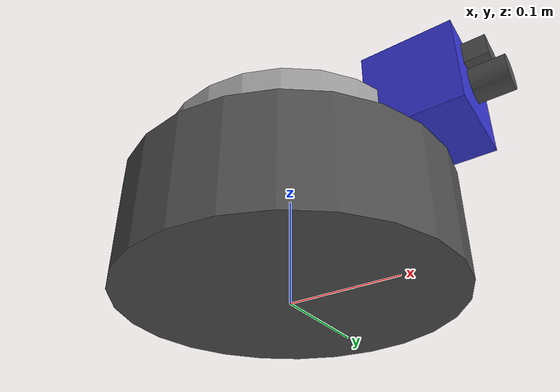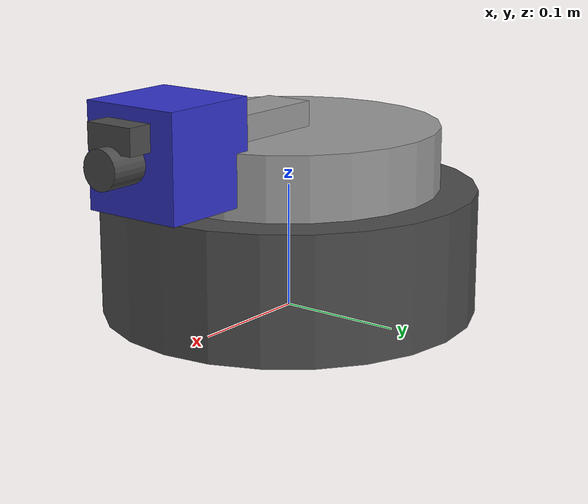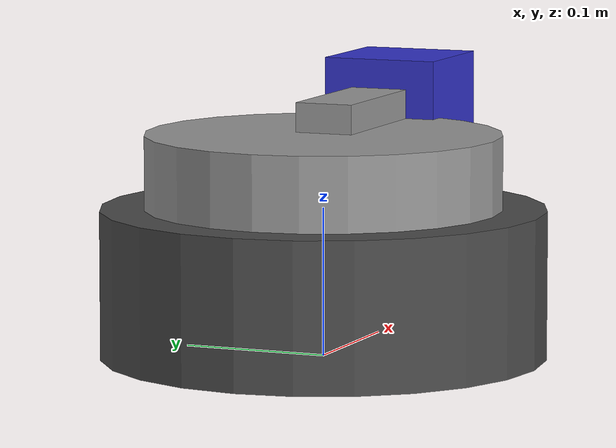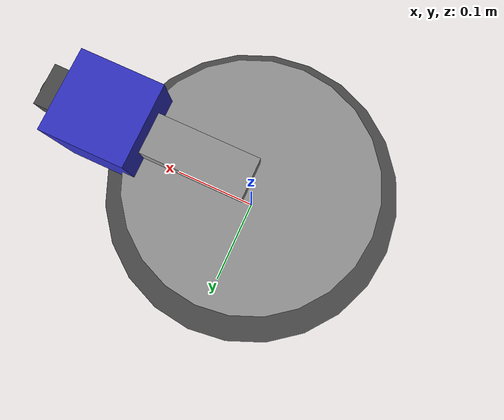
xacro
<?xml version="1.0"?>
<robot xmlns:xacro="http://www.ros.org/wiki/xacro" name="tracking_turret">

  <!-- Properties -->
  <xacro:property name="base_height" value="0.1"/>
  <xacro:property name="base_radius" value="0.15"/>
  <xacro:property name="yaw_platform_height" value="0.05"/>
  <xacro:property name="yaw_platform_radius" value="0.12"/>
  <xacro:property name="pitch_arm_length" value="0.1"/>
  <xacro:property name="pitch_arm_width" value="0.04"/>
  <xacro:property name="sensor_head_size" value="0.08"/>

  <!-- Materials -->
  <material name="dark_grey">
    <color rgba="0.3 0.3 0.3 1.0"/>
  </material>
  <material name="light_grey">
    <color rgba="0.6 0.6 0.6 1.0"/>
  </material>
  <material name="blue">
    <color rgba="0.2 0.2 0.8 1.0"/>
  </material>

  <!-- Base Link (fixed to world) -->
  <link name="base_link">
    <visual>
      <geometry>
        <cylinder radius="${base_radius}" length="${base_height}"/>
      </geometry>
      <origin xyz="0 0 ${base_height/2}" rpy="0 0 0"/>
      <material name="dark_grey"/>
    </visual>
    <collision>
      <geometry>
        <cylinder radius="${base_radius}" length="${base_height}"/>
      </geometry>
      <origin xyz="0 0 ${base_height/2}" rpy="0 0 0"/>
    </collision>
    <inertial>
      <mass value="5.0"/>
      <origin xyz="0 0 ${base_height/2}"/>
      <inertia ixx="0.1" ixy="0" ixz="0" iyy="0.1" iyz="0" izz="0.1"/>
    </inertial>
  </link>

  <!-- Yaw Joint (pan) -->
  <joint name="yaw_joint" type="revolute">
    <parent link="base_link"/>
    <child link="yaw_platform"/>
    <origin xyz="0 0 ${base_height}" rpy="0 0 0"/>
    <axis xyz="0 0 1"/>
    <limit lower="${-pi}" upper="${pi}" effort="10" velocity="2.0"/>
    <dynamics damping="0.5" friction="0.1"/>
  </joint>

  <!-- Yaw Platform -->
  <link name="yaw_platform">
    <visual>
      <geometry>
        <cylinder radius="${yaw_platform_radius}" length="${yaw_platform_height}"/>
      </geometry>
      <origin xyz="0 0 ${yaw_platform_height/2}" rpy="0 0 0"/>
      <material name="light_grey"/>
    </visual>
    <collision>
      <geometry>
        <cylinder radius="${yaw_platform_radius}" length="${yaw_platform_height}"/>
      </geometry>
      <origin xyz="0 0 ${yaw_platform_height/2}" rpy="0 0 0"/>
    </collision>
    <inertial>
      <mass value="1.0"/>
      <origin xyz="0 0 ${yaw_platform_height/2}"/>
      <inertia ixx="0.01" ixy="0" ixz="0" iyy="0.01" iyz="0" izz="0.01"/>
    </inertial>
  </link>

  <!-- Pitch Joint (tilt) -->
  <joint name="pitch_joint" type="revolute">
    <parent link="yaw_platform"/>
    <child link="pitch_arm"/>
    <origin xyz="0 0 ${yaw_platform_height}" rpy="0 0 0"/>
    <axis xyz="0 1 0"/>
    <limit lower="${-pi/3}" upper="${pi/3}" effort="10" velocity="2.0"/>
    <dynamics damping="0.3" friction="0.1"/>
  </joint>

  <!-- Pitch Arm -->
  <link name="pitch_arm">
    <visual>
      <geometry>
        <box size="${pitch_arm_length} ${pitch_arm_width} ${pitch_arm_width}"/>
      </geometry>
      <origin xyz="${pitch_arm_length/2} 0 0" rpy="0 0 0"/>
      <material name="light_grey"/>
    </visual>
    <collision>
      <geometry>
        <box size="${pitch_arm_length} ${pitch_arm_width} ${pitch_arm_width}"/>
      </geometry>
      <origin xyz="${pitch_arm_length/2} 0 0" rpy="0 0 0"/>
    </collision>
    <inertial>
      <mass value="0.5"/>
      <origin xyz="${pitch_arm_length/2} 0 0"/>
      <inertia ixx="0.001" ixy="0" ixz="0" iyy="0.001" iyz="0" izz="0.001"/>
    </inertial>
  </link>

  <!-- Sensor Head (fixed to pitch arm) -->
  <joint name="sensor_head_joint" type="fixed">
    <parent link="pitch_arm"/>
    <child link="sensor_head"/>
    <origin xyz="${pitch_arm_length} 0 0" rpy="0 0 0"/>
  </joint>

  <link name="sensor_head">
    <visual>
      <geometry>
        <box size="${sensor_head_size} ${sensor_head_size} ${sensor_head_size}"/>
      </geometry>
      <origin xyz="${sensor_head_size/2} 0 0" rpy="0 0 0"/>
      <material name="blue"/>
    </visual>
    <collision>
      <geometry>
        <box size="${sensor_head_size} ${sensor_head_size} ${sensor_head_size}"/>
      </geometry>
      <origin xyz="${sensor_head_size/2} 0 0" rpy="0 0 0"/>
    </collision>
    <inertial>
      <mass value="0.3"/>
      <origin xyz="${sensor_head_size/2} 0 0"/>
      <inertia ixx="0.0005" ixy="0" ixz="0" iyy="0.0005" iyz="0" izz="0.0005"/>
    </inertial>
  </link>

  <!-- Camera Link -->
  <joint name="camera_joint" type="fixed">
    <parent link="sensor_head"/>
    <child link="camera_link"/>
    <origin xyz="${sensor_head_size} 0 0" rpy="0 0 0"/>
  </joint>

  <link name="camera_link">
    <visual>
      <geometry>
        <cylinder radius="0.015" length="0.03"/>
      </geometry>
      <origin xyz="0.015 0 0" rpy="0 ${pi/2} 0"/>
      <material name="dark_grey"/>
    </visual>
    <inertial>
      <mass value="0.05"/>
      <inertia ixx="0.0001" ixy="0" ixz="0" iyy="0.0001" iyz="0" izz="0.0001"/>
    </inertial>
  </link>

  <!-- Camera Optical Frame (Z forward, X right, Y down - standard camera convention) -->
  <joint name="camera_optical_joint" type="fixed">
    <parent link="camera_link"/>
    <child link="camera_optical_frame"/>
    <origin xyz="0 0 0" rpy="${-pi/2} 0 ${-pi/2}"/>
  </joint>

  <link name="camera_optical_frame"/>

  <!-- Radar Link (simulated) -->
  <joint name="radar_joint" type="fixed">
    <parent link="sensor_head"/>
    <child link="radar_link"/>
    <origin xyz="${sensor_head_size} 0 ${sensor_head_size/4}" rpy="0 0 0"/>
  </joint>

  <link name="radar_link">
    <visual>
      <geometry>
        <box size="0.02 0.04 0.02"/>
      </geometry>
      <origin xyz="0.01 0 0" rpy="0 0 0"/>
      <material name="dark_grey"/>
    </visual>
    <inertial>
      <mass value="0.05"/>
      <inertia ixx="0.0001" ixy="0" ixz="0" iyy="0.0001" iyz="0" izz="0.0001"/>
    </inertial>
  </link>

  <!-- Gazebo plugins -->
  <gazebo>
    <plugin name="gazebo_ros_joint_state_publisher" filename="libgazebo_ros_joint_state_publisher.so">
      <update_rate>50</update_rate>
      <joint_name>yaw_joint</joint_name>
      <joint_name>pitch_joint</joint_name>
    </plugin>
  </gazebo>

  <!-- Camera sensor -->
  <gazebo reference="camera_link">
    <sensor name="camera" type="camera">
      <always_on>true</always_on>
      <update_rate>30</update_rate>
      <camera>
        <horizontal_fov>1.047</horizontal_fov>
        <image>
          <width>640</width>
          <height>480</height>
          <format>R8G8B8</format>
        </image>
        <clip>
          <near>0.1</near>
          <far>100</far>
        </clip>
      </camera>
      <plugin name="camera_plugin" filename="libgazebo_ros_camera.so">
        <ros>
          <namespace>/turret</namespace>
          <remapping>image_raw:=camera/image_raw</remapping>
          <remapping>camera_info:=camera/camera_info</remapping>
        </ros>
        <frame_name>camera_optical_frame</frame_name>
      </plugin>
    </sensor>
  </gazebo>

  <!-- Joint controllers for Gazebo -->
  <gazebo>
    <plugin name="gazebo_ros2_control" filename="libgazebo_ros2_control.so">
      <parameters>$(find turret_description)/config/turret_controllers.yaml</parameters>
    </plugin>
  </gazebo>

  <!-- Transmission for joints -->
  <transmission name="yaw_transmission">
    <type>transmission_interface/SimpleTransmission</type>
    <joint name="yaw_joint">
      <hardwareInterface>hardware_interface/PositionJointInterface</hardwareInterface>
    </joint>
    <actuator name="yaw_motor">
      <hardwareInterface>hardware_interface/PositionJointInterface</hardwareInterface>
      <mechanicalReduction>1</mechanicalReduction>
    </actuator>
  </transmission>

  <transmission name="pitch_transmission">
    <type>transmission_interface/SimpleTransmission</type>
    <joint name="pitch_joint">
      <hardwareInterface>hardware_interface/PositionJointInterface</hardwareInterface>
    </joint>
    <actuator name="pitch_motor">
      <hardwareInterface>hardware_interface/PositionJointInterface</hardwareInterface>
      <mechanicalReduction>1</mechanicalReduction>
    </actuator>
  </transmission>

</robot>
